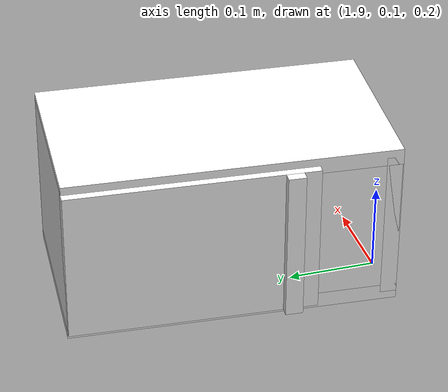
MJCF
<mujoco model="cabinet">
    <compiler angle="radian" eulerseq='zxy' />
    <option gravity = "0 0 0" />
    <option>
        <flag contact = "disable"/>
    </option>
    <statistic	extent="1.0" center="0.0 0.0 0.0"/>
    <visual>
        <map fogstart="3" fogend="5" force="0.1" znear=" 0.100000 " zfar=" 12.000000 "/>
    </visual>
    <size njmax="500" nconmax="100" />
    <actuator>
        <velocity joint="bottom_left_hinge" name="viva_revolution" kv='10'></velocity>
    </actuator>
    <asset>
        <texture builtin="flat" name="tabletex" height="32" width="32" rgb1="1 1 1" type="cube"></texture>
        <texture builtin="flat" name="objtex" height="32" width="32" rgb1="1 1 1" type="cube"></texture>
        <texture builtin="flat" name="handletex" height="32" width="32" rgb1="1 1 1" type="cube"></texture>
        <texture builtin="flat" name="wallpaper" height="32" width="32" rgb1="1 0 0" type="cube"></texture>
        <texture builtin="flat" name="kp" height="32" width="32" rgb1="1 1 1" type="cube"></texture>
        <material name="geomTable" shininess="0.03" specular="0.75" texture="tabletex"></material>
        <material name="geomObj" shininess="0.03" specular="0.75" texture="objtex"></material>
        <material name="geomHandle" shininess="0.03" specular="0.75" texture="handletex"></material>
        <material name="ax" shininess="0.03" specular="0.75" texture="wallpaper"></material>
        <material name="bg" shininess="0.03" specular="0.75" texture="wallpaper"></material>
        <material name="geomKeypad" shininess="0.03" specular="0.75" texture="kp"></material>
    </asset>
    <worldbody>
        <body name="cabinet_bottom" pos= " 1.979397 0.265179 0.185966 "  quat= " 0.039161 0.000000 0.000000 0.999233" >
            <inertial pos="0 0 0" mass="1" diaginertia="1 1 1" />
            <geom size= " 0.103431 0.188565 0.009403 "  type="box" material="geomObj" name="b"/>
            <body name="cabinet_left" pos= " 0.000000 -0.179162 0.089306 " >
                <inertial pos="0 0 0" mass="1" diaginertia="1 1 1" />
                <geom size= " 0.103431 0.009403 0.089306 "  type="box" material="geomObj" name="c" />
            </body>
            <body name="cabinet_right" pos= " 0.000000 0.179162 0.089306 " >
                <inertial pos="0 0 0" mass="1" diaginertia="1 1 1" />
                <geom size= " 0.103431 0.009403 0.089306 "  type="box" material="geomObj" name="d" />
            </body>
            <body name="cabinet_top" pos= " 0.000000 0.000000 0.178612 " >
                <inertial pos="0 0 0" mass="1" diaginertia="1 1 1" />
                <geom size= " 0.103431 0.188565 0.009403 "  type="box" material="geomObj" name="e"/>
            </body>
            <body name="cabinet_back" pos= " -0.094028 0.000000 0.089306 "  >
                <inertial pos="0 0 0" mass="1" diaginertia="1 1 1" />
                <geom size= " 0.009403 0.188565 0.089306 "  type="box" material="geomObj" name="f" />
            </body>
            <body name="cabinet_keypad" pos= " 0.009403 0.140424 0.089306 " >
                <inertial pos="0 0 0" mass="1" diaginertia="1 1 1" />
                <geom size= " 0.094028 0.047141 0.079903 "  type="box" material="geomKeypad" name="keypizzlemynizzle" />
            </body>
            <body name="cabinet_left_hinge" pos= " 0.103431 -0.188565 0.089306 " >
                <inertial pos= " 0.000000 0.141424 0.000000 "  mass="1" diaginertia="1 1 1" />
                <joint name="bottom_left_hinge" type="hinge" pos="0 0 0" axis="0 0 1" limited="true" range= "-2.3 0"  />
                <geom size= " 0.009403 0.141424 0.089306 "  pos= " 0.000000 0.141424 0.000000 "  type="box" material="geomObj" name="g"/>
                <body name="handle_link" pos= " 0.010000 0.252847 0.000000 " >
                    <inertial pos="0 0 0" mass="1" diaginertia="1 1 1" />
                    <geom size= " 0.010000 0.010000 0.089306 "  type="box" material="geomHandle" name="h"/>
                </body>
            </body>
        </body>
        <body name="external_camera_body_0" pos="0.0 0 0.00" >
            <camera euler="-1.57 1.57 0.0" fovy=" 54.280851 " name="external_camera_0" pos="0.0 0 0"></camera>
            <inertial pos= " 0.00 0.0 0.000000 " mass="1" diaginertia="1 1 1" />
            <joint name="cam_j" pos="0.0 0 0" axis = "1 0 0" type="free" />
        </body>
    </worldbody>
</mujoco>
